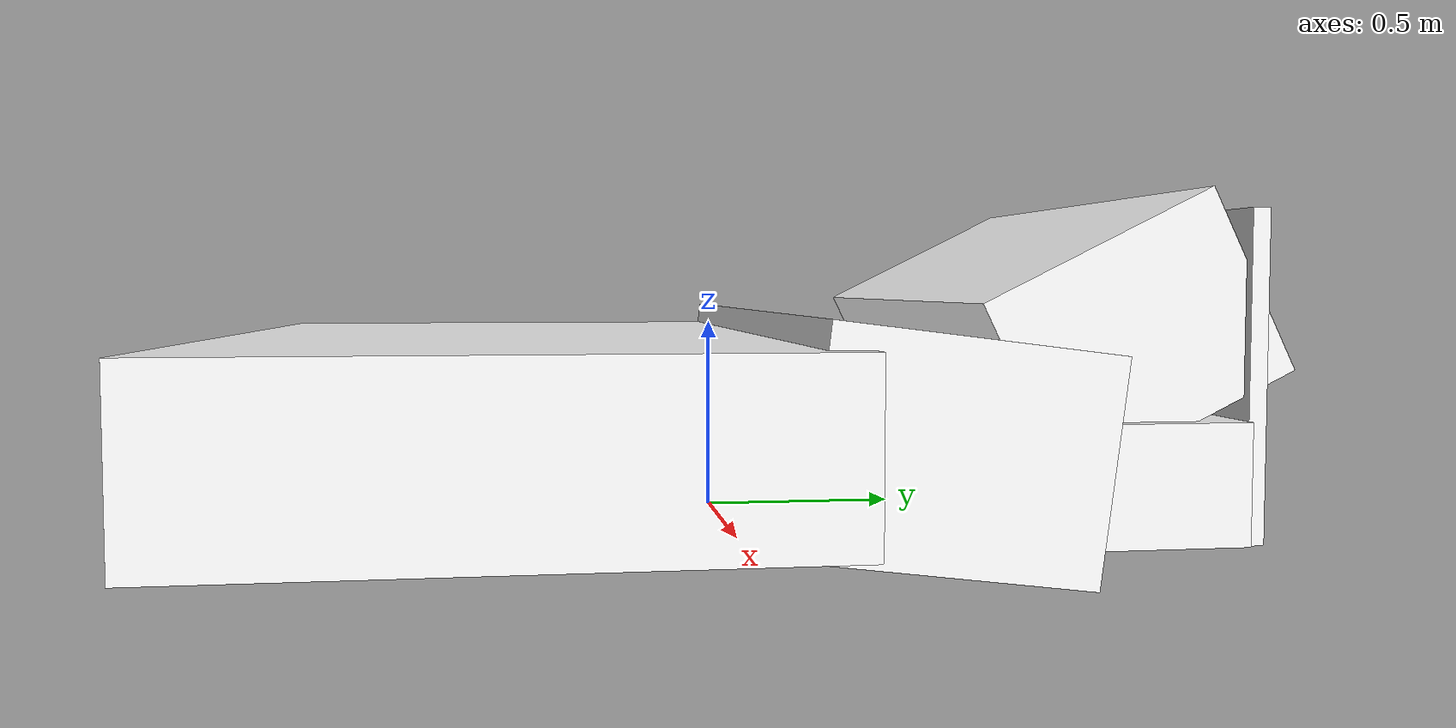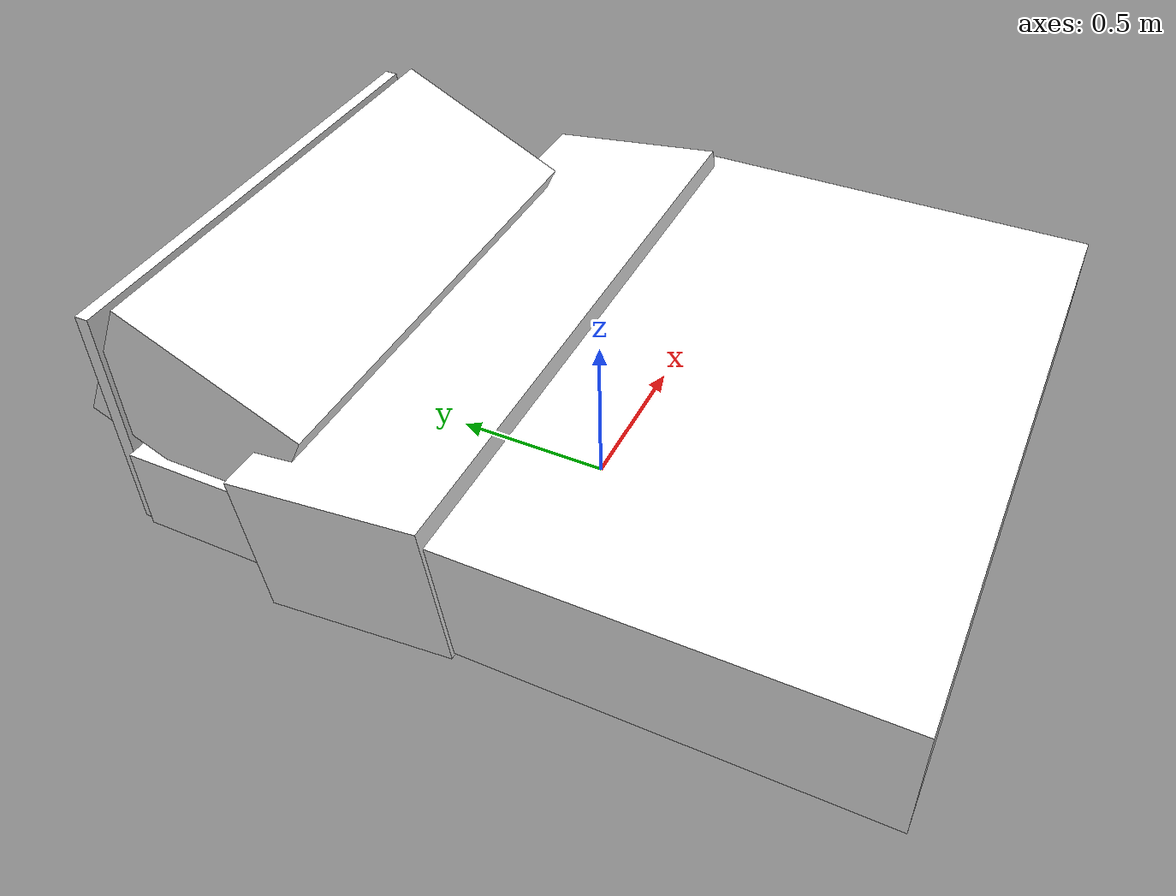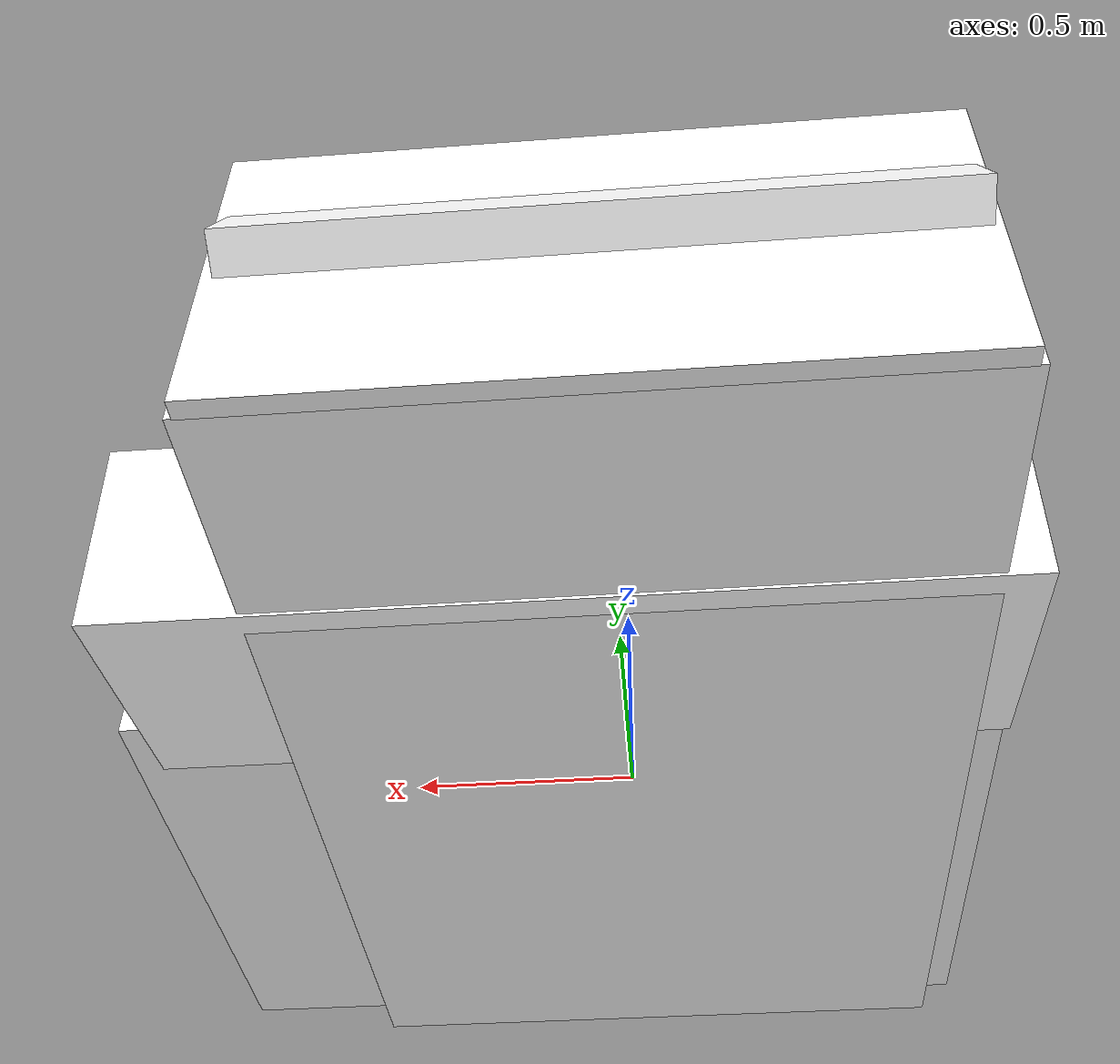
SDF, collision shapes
<?xml version="1.0" encoding="UTF-8"?>
<sdf version="1.6">
    <model name="Toilet">
        <static>true</static>
        <link name="base_link">
            <visual name="visual">
                <geometry>
                    <mesh>
                        <uri>meshes/toilet.dae</uri>
                    </mesh>
                </geometry>
                <material>
                    <diffuse>1.0 1.0 1.0</diffuse>
                    <specular>1.0 1.0 1.0</specular>
                    <pbr>
                        <metal>
                            <albedo_map>materials/textures/Toilet_Albedo.png</albedo_map>
                            <normal_map>materials/textures/Toilet_Normal.png</normal_map>
                            <roughness_map>materials/textures/Toilet_Roughness.png</roughness_map>
                        </metal>
                    </pbr>
                </material>
            </visual>
            <collision name="Box001">
                <pose>0.0 1.16967 0.388813 0.0 0.0 -1.5708</pose>
                <geometry>
                    <box>
                        <size>0.0425444 1.52334 0.777627</size>
                    </box>
                </geometry>
            </collision>
            <collision name="Box002">
                <pose>0.0 -0.0264773 0.143861 0.0 0.0 -1.5708</pose>
                <geometry>
                    <box>
                        <size>2.35526 1.55381 0.287722</size>
                    </box>
                </geometry>
            </collision>
            <collision name="Box003">
                <pose>-0.00401034 0.897211 0.481077 1.5708 0.456787 -1.5708</pose>
                <geometry>
                    <box>
                        <size>0.60728 0.471611 1.48256</size>
                    </box>
                </geometry>
            </collision>
            <collision name="Box004">
                <pose>0.123479 0.36017 0.264194 1.5708 -0.125019 -1.5708</pose>
                <geometry>
                    <box>
                        <size>0.60728 0.471611 1.99479</size>
                    </box>
                </geometry>
            </collision>
            <collision name="Box005">
                <pose>0.163765 -0.521168 0.276162 0.0 0.0 -1.5708</pose>
                <geometry>
                    <box>
                        <size>1.3896 2.04844 0.399703</size>
                    </box>
                </geometry>
            </collision>
        </link>
    </model>
</sdf>
